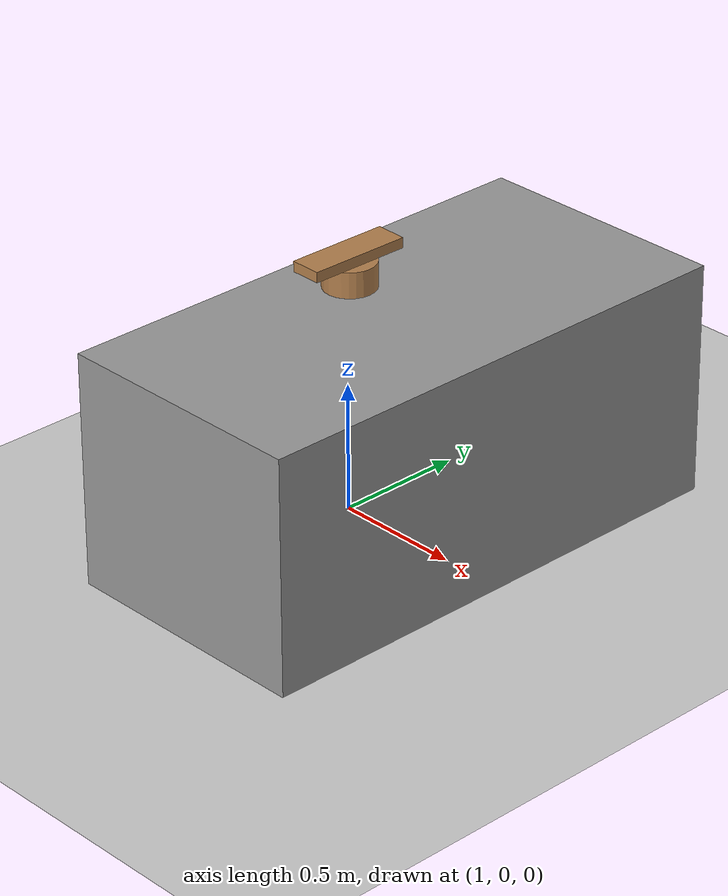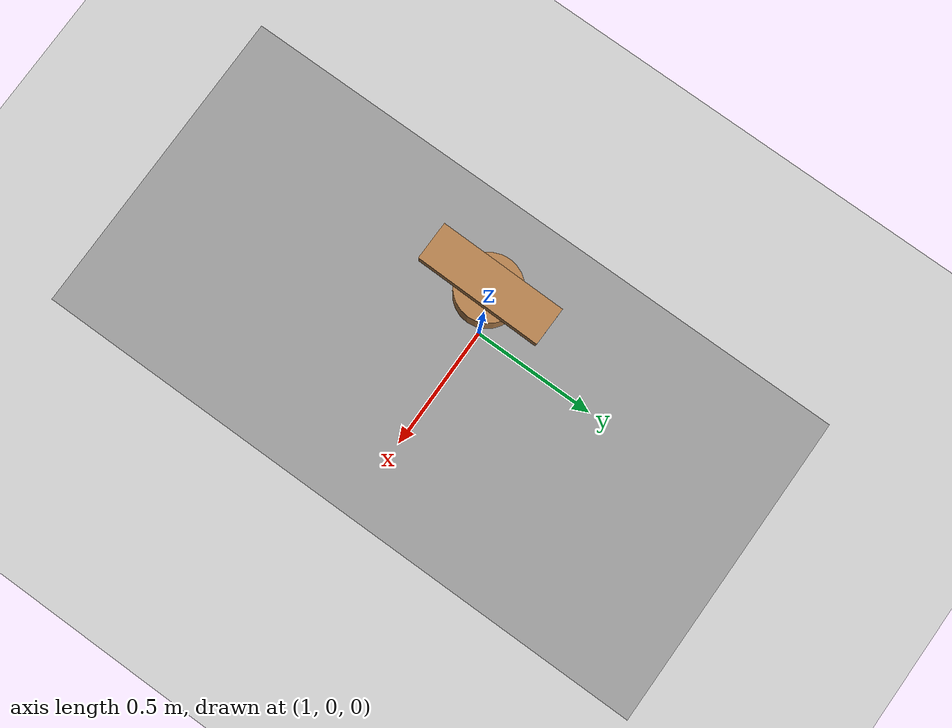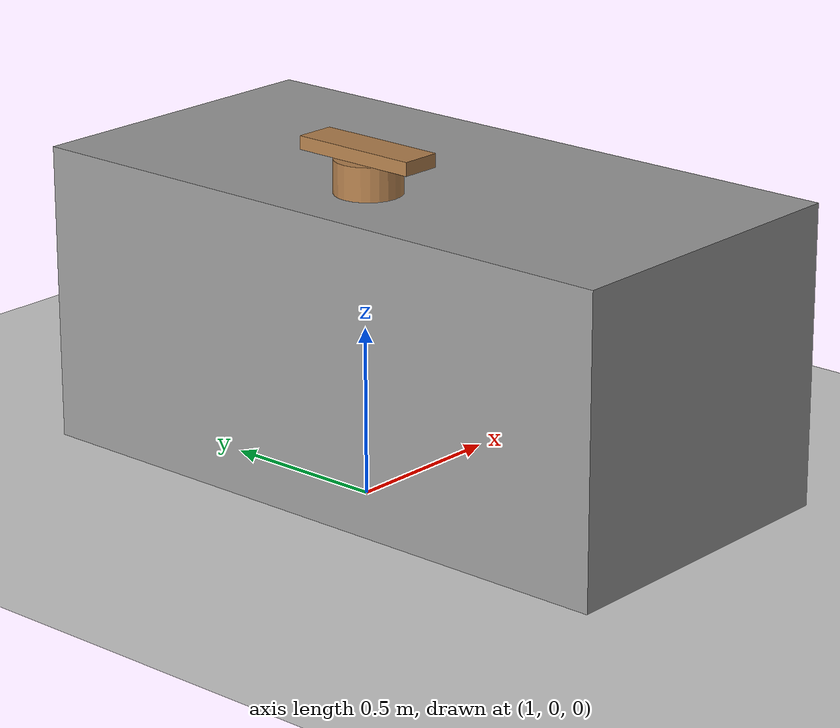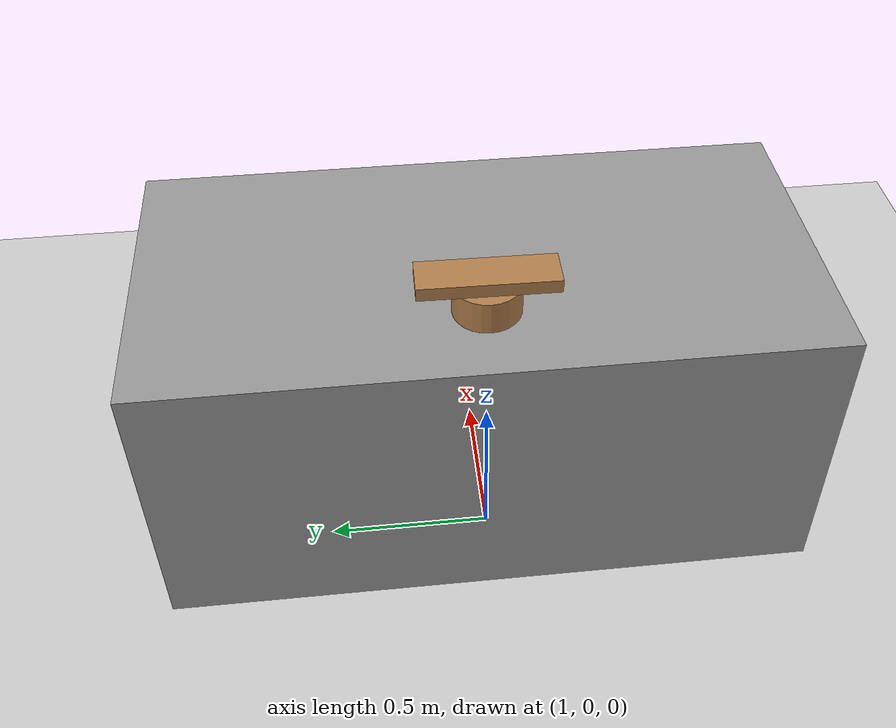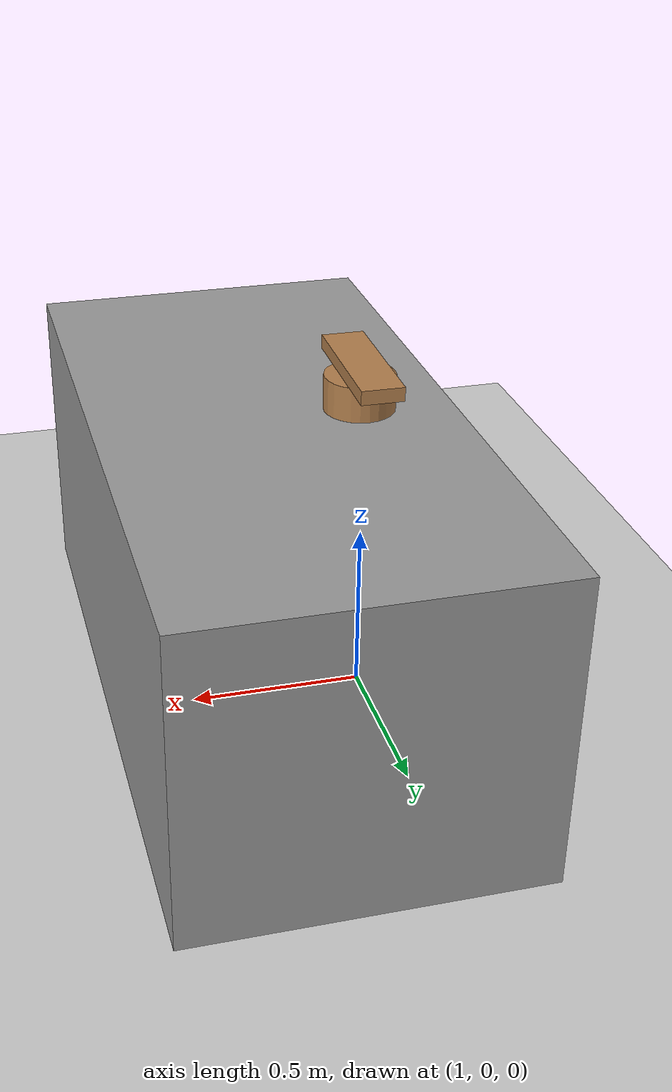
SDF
<sdf version="1.6">
 <world name="default">
  <light name="sun" type="directional">
   <pose>0 0 10 0 -0 0</pose>
   <diffuse>0.8 0.8 0.8 1</diffuse>
   <specular>0.1 0.1 0.1 1</specular>
   <attenuation>
    <range>1000</range>
    <constant>0.9</constant>
    <linear>0.01</linear>
    <quadratic>0.001</quadratic>
   </attenuation>
   <direction>-0.5 0.5 -1</direction>
  </light>
  <model name="ground_plane">
   <static>1</static>
   <link name="link">
    <collision name="collision">
     <geometry><plane><normal>0 0 1</normal><size>100 100</size></plane></geometry>
     <surface><friction><ode><mu>100</mu><mu2>50</mu2></ode></friction></surface>
    </collision>
    <visual name="visual">
     <cast_shadows>0</cast_shadows>
     <geometry><plane><normal>0 0 1</normal><size>100 100</size></plane></geometry>
     <material>
      <script><uri>file://media/materials/scripts/gazebo.material</uri><name>Gazebo/Grey</name></script>
     </material>
    </visual>
   </link>
  </model>
  <gravity>0 0 -9.8</gravity>
  <magnetic_field>6e-06 2.3e-05 -4.2e-05</magnetic_field>
  <atmosphere type="adiabatic"/>
  <physics name="default_physics" default="0" type="ode">
   <max_step_size>0.001</max_step_size>
   <real_time_factor>1</real_time_factor>
   <real_time_update_rate>1000</real_time_update_rate>
  </physics>
  <scene><ambient>0.4 0.4 0.4 1</ambient><background>0.7 0.7 0.7 1</background><shadows>1</shadows></scene>
  <spherical_coordinates>
   <surface_model>EARTH_WGS84</surface_model>
   <latitude_deg>0</latitude_deg>
   <longitude_deg>0</longitude_deg>
   <elevation>0</elevation>
   <heading_deg>0</heading_deg>
  </spherical_coordinates>
  <model name="table2_0">
   <link name="link">
    <inertial>
     <mass>100</mass>
     <inertia><ixx>16.6667</ixx><ixy>0</ixy><ixz>0</ixz><iyy>16.6667</iyy><iyz>0</iyz><izz>16.6667</izz></inertia>
    </inertial>
    <visual name="visual">
     <geometry><box><size>1 2 0.9</size></box></geometry>
     <material>
      <script><name>Gazebo/Grey</name><uri>file://media/materials/scripts/gazebo.material</uri></script>
      <ambient>0.3 0.3 0.3 1</ambient>
      <diffuse>0.7 0.7 0.7 1</diffuse>
      <specular>0.01 0.01 0.01 1</specular>
      <emissive>0 0 0 1</emissive>
      <shader type="vertex"><normal_map>__default__</normal_map></shader>
     </material>
    </visual>
    <collision name="collision">
     <geometry><box><size>1 2 0.9</size></box></geometry>
     <surface>
      <friction>
       <ode><mu>1</mu><mu2>1</mu2><fdir1>0 0 0</fdir1><slip1>0</slip1><slip2>0</slip2></ode>
       <torsional>
        <coefficient>1</coefficient>
        <patch_radius>0</patch_radius>
        <surface_radius>0</surface_radius>
        <use_patch_radius>1</use_patch_radius>
        <ode><slip>0</slip></ode>
       </torsional>
      </friction>
      <bounce><restitution_coefficient>0</restitution_coefficient><threshold>1e+06</threshold></bounce>
      <contact>
       <collide_without_contact>0</collide_without_contact>
       <collide_without_contact_bitmask>1</collide_without_contact_bitmask>
       <collide_bitmask>1</collide_bitmask>
       <ode>
        <soft_cfm>0</soft_cfm>
        <soft_erp>0.2</soft_erp>
        <kp>1e+13</kp>
        <kd>1</kd>
        <max_vel>0.01</max_vel>
        <min_depth>0</min_depth>
       </ode>
       <bullet>
        <split_impulse>1</split_impulse>
        <split_impulse_penetration_threshold>-0.01</split_impulse_penetration_threshold>
        <soft_cfm>0</soft_cfm>
        <soft_erp>0.2</soft_erp>
        <kp>1e+13</kp>
        <kd>1</kd>
       </bullet>
      </contact>
     </surface>
    </collision>
   </link>
   <static>0</static>
   <pose>1.25398 8e-06 0.445183 -8e-06 -0.00029 4.2e-05</pose>
  </model>
  <model name="Untitled1_0_0">
   <link name="link_0">
    <inertial>
     <mass>2</mass>
     <inertia><ixx>0.025833</ixx><ixy>0</ixy><ixz>0</ixz><iyy>0.025833</iyy><iyz>0</iyz><izz>0.025</izz></inertia>
    </inertial>
    <visual name="visual">
     <geometry><cylinder><radius>0.1</radius><length>0.1</length></cylinder></geometry>
     <material>
      <lighting>1</lighting>
      <script><uri>file://media/materials/scripts/gazebo.material</uri><name>Gazebo/Wood</name></script>
      <ambient>0.3 0.3 0.3 1</ambient>
      <diffuse>0.7 0.7 0.7 1</diffuse>
      <specular>0.01 0.01 0.01 1</specular>
      <emissive>0 0 0 1</emissive>
      <shader type="vertex"><normal_map>__default__</normal_map></shader>
     </material>
    </visual>
    <collision name="collision">
     <geometry><cylinder><radius>0.1</radius><length>0.1</length></cylinder></geometry>
     <surface>
      <friction>
       <ode><mu>1</mu><mu2>1</mu2><fdir1>0 0 0</fdir1><slip1>0</slip1><slip2>0</slip2></ode>
       <torsional>
        <coefficient>1</coefficient>
        <patch_radius>0</patch_radius>
        <surface_radius>0</surface_radius>
        <use_patch_radius>1</use_patch_radius>
        <ode><slip>0</slip></ode>
       </torsional>
      </friction>
      <bounce><restitution_coefficient>0</restitution_coefficient><threshold>1e+06</threshold></bounce>
      <contact>
       <collide_without_contact>0</collide_without_contact>
       <collide_without_contact_bitmask>1</collide_without_contact_bitmask>
       <collide_bitmask>1</collide_bitmask>
       <ode>
        <soft_cfm>0</soft_cfm>
        <soft_erp>0.2</soft_erp>
        <kp>1e+13</kp>
        <kd>1</kd>
        <max_vel>0.01</max_vel>
        <min_depth>0</min_depth>
       </ode>
       <bullet>
        <split_impulse>1</split_impulse>
        <split_impulse_penetration_threshold>-0.01</split_impulse_penetration_threshold>
        <soft_cfm>0</soft_cfm>
        <soft_erp>0.2</soft_erp>
        <kp>1e+13</kp>
        <kd>1</kd>
       </bullet>
      </contact>
     </surface>
    </collision>
   </link>
   <static>0</static>
   <pose>1.01509 -0.000639 0.945125 -2.9e-05 -0.000398 -0.000608</pose>
  </model>
  <model name="unit_box_0_0">
   <link name="link">
    <inertial>
     <mass>0.2</mass>
     <inertia>
      <ixx>0.0166667</ixx>
      <ixy>0</ixy>
      <ixz>0</ixz>
      <iyy>0.0166667</iyy>
      <iyz>0</iyz>
      <izz>0.0166667</izz>
     </inertia>
    </inertial>
    <visual name="visual">
     <geometry><box><size>0.12 0.4 0.04</size></box></geometry>
     <material>
      <script><name>Gazebo/Wood</name><uri>file://media/materials/scripts/gazebo.material</uri></script>
      <ambient>0.3 0.3 0.3 1</ambient>
      <diffuse>0.7 0.7 0.7 1</diffuse>
      <specular>0.01 0.01 0.01 1</specular>
      <emissive>0 0 0 1</emissive>
      <shader type="vertex"><normal_map>__default__</normal_map></shader>
     </material>
    </visual>
    <collision name="collision">
     <geometry><box><size>0.12 0.4 0.04</size></box></geometry>
     <surface>
      <friction>
       <ode><mu>1</mu><mu2>1</mu2><fdir1>0 0 0</fdir1><slip1>0</slip1><slip2>0</slip2></ode>
       <torsional>
        <coefficient>1</coefficient>
        <patch_radius>0</patch_radius>
        <surface_radius>0</surface_radius>
        <use_patch_radius>1</use_patch_radius>
        <ode><slip>0</slip></ode>
       </torsional>
      </friction>
      <bounce><restitution_coefficient>0</restitution_coefficient><threshold>1e+06</threshold></bounce>
      <contact>
       <collide_without_contact>0</collide_without_contact>
       <collide_without_contact_bitmask>1</collide_without_contact_bitmask>
       <collide_bitmask>1</collide_bitmask>
       <ode>
        <soft_cfm>0</soft_cfm>
        <soft_erp>0.2</soft_erp>
        <kp>1e+13</kp>
        <kd>1</kd>
        <max_vel>0.01</max_vel>
        <min_depth>0</min_depth>
       </ode>
       <bullet>
        <split_impulse>1</split_impulse>
        <split_impulse_penetration_threshold>-0.01</split_impulse_penetration_threshold>
        <soft_cfm>0</soft_cfm>
        <soft_erp>0.2</soft_erp>
        <kp>1e+13</kp>
        <kd>1</kd>
       </bullet>
      </contact>
     </surface>
    </collision>
   </link>
   <static>0</static>
   <pose>1.01025 -0.0012 1.01512 -6e-05 -0.000369 -0.013823</pose>
  </model>
 </world>
</sdf>
